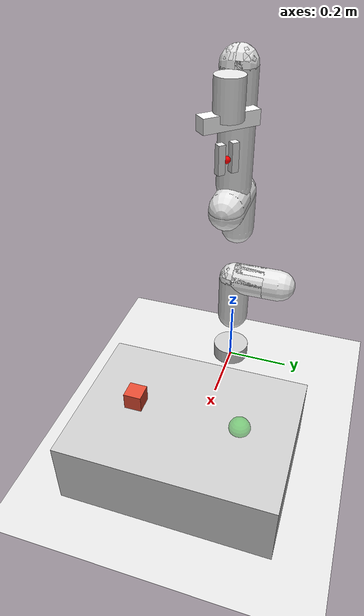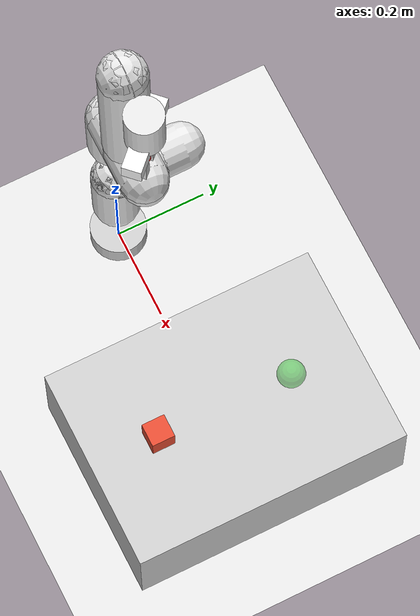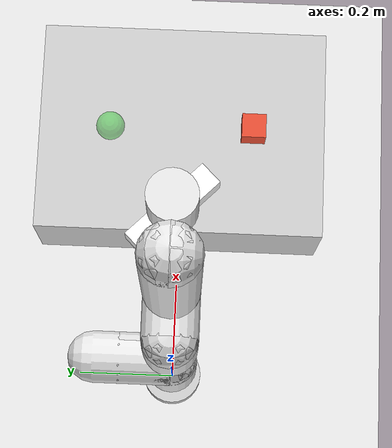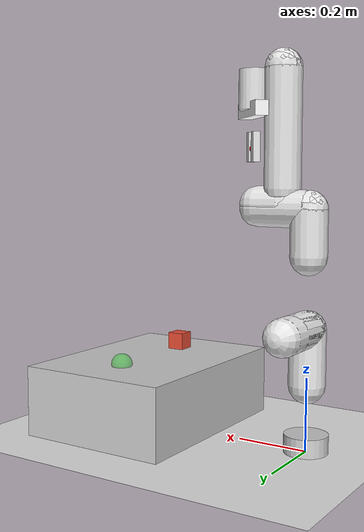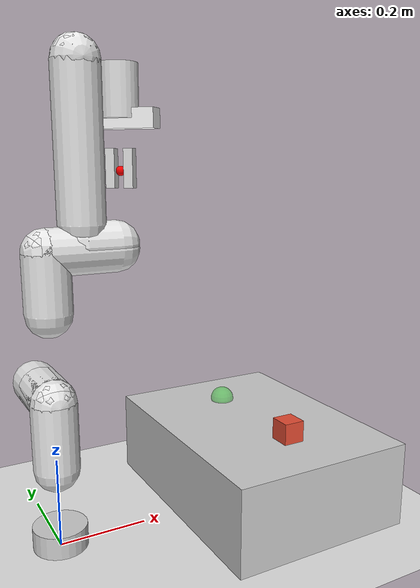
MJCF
<mujoco model="franka_task_physics">
  <include file="panda.xml"/>

  <statistic center="0.4 0 0.3" extent="0.9"/>

  <visual>
    <headlight diffuse="0.6 0.6 0.6" ambient="0.3 0.3 0.3" specular="0 0 0"/>
    <rgba haze="0.15 0.25 0.35 1"/>
    <global azimuth="140" elevation="-25"/>
  </visual>

  <asset>
    <texture type="skybox" builtin="gradient" rgb1="0.3 0.5 0.7" rgb2="0 0 0" width="512" height="3072"/>
    <texture type="2d" name="groundplane" builtin="checker" mark="edge" rgb1="0.2 0.3 0.4" rgb2="0.1 0.2 0.3"
      markrgb="0.8 0.8 0.8" width="300" height="300"/>
    <material name="groundplane" texture="groundplane" texuniform="true" texrepeat="5 5" reflectance="0.2"/>
  </asset>

  <worldbody>
    <light pos="0.4 0 1.5" dir="0 0 -1" directional="true"/>
    <geom name="floor" size="0 0 0.05" type="plane" material="groundplane"/>

    <geom name="table" type="box" pos="0.5 0.0 0.10" size="0.22 0.30 0.10" rgba="0.8 0.8 0.8 1"
      contype="1" conaffinity="1"/>

    <body name="cube" pos="0.50 -0.15 0.225">
      <freejoint name="cube_free"/>
      <!-- contype/conaffinity on bit 0 so the fingers (also bit 0) actually collide with the
           cube; high friction so the friction grasp does not slip under gravity. -->
      <geom name="cube_geom" type="box" size="0.025 0.025 0.025" rgba="0.9 0.3 0.2 1" mass="0.05"
        contype="1" conaffinity="1" friction="1.5 0.05 0.001"/>
    </body>

    <site name="target" pos="0.50 0.15 0.205" size="0.03" rgba="0.2 0.8 0.2 0.5"/>
  </worldbody>

  <equality>
    <weld name="grasp" body1="hand" body2="cube" active="false"/>
  </equality>
</mujoco>

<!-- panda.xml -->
<mujoco model="franka_panda">
  <compiler angle="radian" meshdir="."/>

  <default>
    <joint damping="1" armature="0.1"/>
    <!-- Visual settings for the robot links -->
    <geom type="capsule" rgba="0.9 0.9 0.9 1" size="0.05"/>
    <site rgba="1 0 0 1" size="0.01"/>
  </default>

  <asset>
    <!-- We use procedural textures or colors instead of meshes for simplicity -->
  </asset>

  <worldbody>
    <!-- Robot Base -->
    <body name="link0" pos="0 0 0">
      <geom type="cylinder" fromto="0 0 0 0 0 0.05" size="0.06" rgba="0.8 0.8 0.8 1"/>

      <!-- Joint 1 -->
      <body name="link1" pos="0 0 0.333">
        <joint name="joint1" axis="0 0 1" range="-2.8973 2.8973"/>
        <geom fromto="0 0 0 0 0 -0.15"/>
        <geom fromto="0 0 0 0 0.1 0" size="0.05"/>

        <!-- Joint 2 -->
        <body name="link2" pos="0 0 0" quat="0.707107 -0.707107 0 0">
          <joint name="joint2" axis="0 0 1" range="-1.7628 1.7628"/>
          <geom fromto="0 0 0 0 0 0.15"/>

          <!-- Joint 3 -->
          <body name="link3" pos="0 -0.316 0" quat="0.707107 0.707107 0 0">
            <joint name="joint3" axis="0 0 1" range="-2.8973 2.8973"/>
            <geom fromto="0 0 0 0 0 -0.125"/>
            <geom fromto="0 0 0 0.15 0 0" size="0.05"/>

            <!-- Joint 4 -->
            <body name="link4" pos="0.15 0 0.01" quat="0.707107 0.707107 0 0">
              <joint name="joint4" axis="0 0 1" range="-3.0718 -0.0698"/>
              <geom fromto="0 0 0 -0.075 0 0"/>

              <!-- Joint 5 -->
              <body name="link5" pos="-0.0725 0.36 0" quat="0.707107 -0.707107 0 0">
                <joint name="joint5" axis="0 0 1" range="-2.8973 2.8973"/>
                <geom fromto="0 0 0 0 0 -0.3175"/>

                <!-- Joint 6 -->
                <body name="link6" pos="0 0 0" quat="0.707107 0.707107 0 0">
                  <joint name="joint6" axis="0 0 1" range="-0.0175 3.7525"/>
                  <geom fromto="0 0 0 0 0 0.001"/>

                  <!-- Joint 7 -->
                  <body name="link7" pos="0.088 0 0" quat="0.707107 0.707107 0 0">
                    <joint name="joint7" axis="0 0 1" range="-2.8973 2.8973"/>
                    <geom type="cylinder" fromto="0 0 0 0 0 0.107" size="0.04"/>

                    <!-- Hand -->
                    <body name="hand" pos="0 0 0.107" quat="0.92388 0 0 -0.382683">
                      <geom type="box" size="0.02 0.08 0.02" rgba="1 1 1 1"/>

                      <!-- Attachment Site for IK -->
                      <site name="attachment_site" pos="0 0 0.1034" />

                      <!-- Fingers -->
                      <body name="left_finger" pos="0 0 0.0584">
                          <joint name="finger_joint1" type="slide" axis="0 1 0" range="0 0.04"/>
                          <geom type="box" size="0.01 0.01 0.04" pos="0 0.02 0.04" friction="5 5 0.1" solimp="0.99 0.99 0.001" solref="0.002 1"/>
                        </body>
                        <body name="right_finger" pos="0 0 0.0584">
                          <joint name="finger_joint2" type="slide" axis="0 -1 0" range="0 0.04"/>
                          <geom type="box" size="0.01 0.01 0.04" pos="0 -0.02 0.04" friction="5 5 0.1" solimp="0.99 0.99 0.001" solref="0.002 1"/>
                        </body>
                    </body>
                  </body>
                </body>
              </body>
            </body>
          </body>
        </body>
      </body>
    </body>
  </worldbody>

  <actuator>
    <motor name="ctrl_joint1" joint="joint1" gear="100"/>
    <motor name="ctrl_joint2" joint="joint2" gear="100"/>
    <motor name="ctrl_joint3" joint="joint3" gear="100"/>
    <motor name="ctrl_joint4" joint="joint4" gear="100"/>
    <motor name="ctrl_joint5" joint="joint5" gear="100"/>
    <motor name="ctrl_joint6" joint="joint6" gear="100"/>
    <motor name="ctrl_joint7" joint="joint7" gear="100"/>
    <position name="ctrl_finger1" joint="finger_joint1" kp="100"/>
    <position name="ctrl_finger2" joint="finger_joint2" kp="100"/>
  </actuator>

  <sensor>
     <jointpos name="jp1" joint="joint1"/>
     <jointpos name="jp2" joint="joint2"/>
     <jointpos name="jp3" joint="joint3"/>
     <jointpos name="jp4" joint="joint4"/>
     <jointpos name="jp5" joint="joint5"/>
     <jointpos name="jp6" joint="joint6"/>
     <jointpos name="jp7" joint="joint7"/>
  </sensor>
</mujoco>
